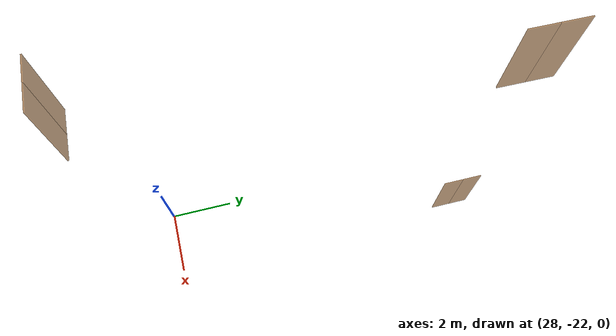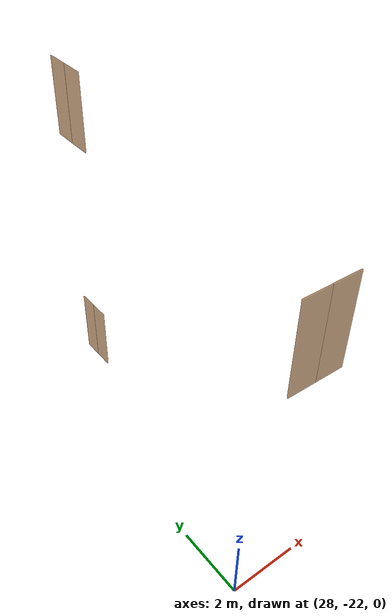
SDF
<sdf version="1.7">
 <world name="sim_world">
  <model name="TD1007AA">
   <pose>29.895930735907072 -12.466205875995822 0.0 0 0 -1.5737789346019069</pose>
   <link name="right">
    <pose>0.3066546672582795 0 1.11 0 0 0</pose>
    <visual name="right_visual">
     <geometry><box><size>0.603309334516559 0.03 2.2</size></box></geometry>
     <material>
      <ambient>0.5 0.25 0 0.6</ambient>
      <diffuse>0.5 0.25 0 0.6</diffuse>
      <pbr><metal><metalness>0.0</metalness></metal></pbr>
     </material>
    </visual>
    <collision name="right_collision">
     <geometry><box><size>0.603309334516559 0.03 2.2</size></box></geometry>
     <surface><contact><collide_bitmask>0x02</collide_bitmask></contact></surface>
    </collision>
    <inertial>
     <mass>50.0</mass>
     <inertia><ixx>20.17041666666667</ixx><iyy>21.683258971311727</iyy><izz>1.5203423046450555</izz></inertia>
    </inertial>
   </link>
   <joint name="right_joint" type="revolute">
    <parent>world</parent>
    <child>right</child>
    <axis><xyz>0 0 -1</xyz><limit><lower>0</lower><upper>1.57</upper></limit></axis>
    <pose>0.3066546672582795 0 0 0 0 0</pose>
   </joint>
   <link name="left">
    <pose>-0.3066546672582795 0 1.11 0 0 0</pose>
    <visual name="left_visual">
     <geometry><box><size>0.603309334516559 0.03 2.2</size></box></geometry>
     <material>
      <ambient>0.5 0.25 0 0.6</ambient>
      <diffuse>0.5 0.25 0 0.6</diffuse>
      <pbr><metal><metalness>0.0</metalness></metal></pbr>
     </material>
    </visual>
    <collision name="left_collision">
     <geometry><box><size>0.603309334516559 0.03 2.2</size></box></geometry>
     <surface><contact><collide_bitmask>0x02</collide_bitmask></contact></surface>
    </collision>
    <inertial>
     <mass>50.0</mass>
     <inertia><ixx>20.17041666666667</ixx><iyy>21.683258971311727</iyy><izz>1.5203423046450555</izz></inertia>
    </inertial>
   </link>
   <joint name="left_joint" type="revolute">
    <parent>world</parent>
    <child>left</child>
    <axis><xyz>0 0 -1</xyz><limit><lower>-1.57</lower><upper>0</upper></limit></axis>
    <pose>-0.3066546672582795 0 0 0 0 0</pose>
   </joint>
   <plugin name="register_component" filename="libregister_component.so">
    <component name="Door">
     <v_max_door>0.5</v_max_door>
     <a_max_door>0.3</a_max_door>
     <a_nom_door>0.15</a_nom_door>
     <dx_min_door>0.01</dx_min_door>
     <f_max_door>500.0</f_max_door>
     <ros_interface>true</ros_interface>
     <door name="TD1007AA" type="DoubleSwingDoor" left_joint_name="left_joint" right_joint_name="right_joint"/>
    </component>
   </plugin>
  </model>
  <model name="TD1104">
   <pose>29.831071160037812 -12.370400812692349 8.0 0 0 1.555111475044199</pose>
   <link name="right">
    <pose>0.3555122669612724 0 1.11 0 0 0</pose>
    <visual name="right_visual">
     <geometry><box><size>0.7010245339225448 0.03 2.2</size></box></geometry>
     <material>
      <ambient>0.5 0.25 0 0.6</ambient>
      <diffuse>0.5 0.25 0 0.6</diffuse>
      <pbr><metal><metalness>0.0</metalness></metal></pbr>
     </material>
    </visual>
    <collision name="right_collision">
     <geometry><box><size>0.7010245339225448 0.03 2.2</size></box></geometry>
     <surface><contact><collide_bitmask>0x02</collide_bitmask></contact></surface>
    </collision>
    <inertial>
     <mass>50.0</mass>
     <inertia><ixx>20.17041666666667</ixx><iyy>22.214314154838842</iyy><izz>2.0513974881721717</izz></inertia>
    </inertial>
   </link>
   <joint name="right_joint" type="revolute">
    <parent>world</parent>
    <child>right</child>
    <axis><xyz>0 0 1</xyz><limit><lower>0</lower><upper>1.57</upper></limit></axis>
    <pose>0.3555122669612724 0 0 0 0 0</pose>
   </joint>
   <link name="left">
    <pose>-0.3555122669612724 0 1.11 0 0 0</pose>
    <visual name="left_visual">
     <geometry><box><size>0.7010245339225448 0.03 2.2</size></box></geometry>
     <material>
      <ambient>0.5 0.25 0 0.6</ambient>
      <diffuse>0.5 0.25 0 0.6</diffuse>
      <pbr><metal><metalness>0.0</metalness></metal></pbr>
     </material>
    </visual>
    <collision name="left_collision">
     <geometry><box><size>0.7010245339225448 0.03 2.2</size></box></geometry>
     <surface><contact><collide_bitmask>0x02</collide_bitmask></contact></surface>
    </collision>
    <inertial>
     <mass>50.0</mass>
     <inertia><ixx>20.17041666666667</ixx><iyy>22.214314154838842</iyy><izz>2.0513974881721717</izz></inertia>
    </inertial>
   </link>
   <joint name="left_joint" type="revolute">
    <parent>world</parent>
    <child>left</child>
    <axis><xyz>0 0 1</xyz><limit><lower>-1.57</lower><upper>0</upper></limit></axis>
    <pose>-0.3555122669612724 0 0 0 0 0</pose>
   </joint>
   <plugin name="register_component" filename="libregister_component.so">
    <component name="Door">
     <v_max_door>0.5</v_max_door>
     <a_max_door>0.3</a_max_door>
     <a_nom_door>0.15</a_nom_door>
     <dx_min_door>0.01</dx_min_door>
     <f_max_door>500.0</f_max_door>
     <ros_interface>true</ros_interface>
     <door name="TD1104" type="DoubleSwingDoor" left_joint_name="left_joint" right_joint_name="right_joint"/>
    </component>
   </plugin>
  </model>
  <model name="TD1105">
   <pose>28.610416642762054 -22.824089985987072 8.0 0 0 3.11904258186162</pose>
   <link name="right">
    <pose>0.33110365024338156 0 1.11 0 0 0</pose>
    <visual name="right_visual">
     <geometry><box><size>0.6522073004867631 0.03 2.2</size></box></geometry>
     <material>
      <ambient>0.5 0.25 0 0.6</ambient>
      <diffuse>0.5 0.25 0 0.6</diffuse>
      <pbr><metal><metalness>0.0</metalness></metal></pbr>
     </material>
    </visual>
    <collision name="right_collision">
     <geometry><box><size>0.6522073004867631 0.03 2.2</size></box></geometry>
     <surface><contact><collide_bitmask>0x02</collide_bitmask></contact></surface>
    </collision>
    <inertial>
     <mass>50.0</mass>
     <inertia><ixx>20.17041666666667</ixx><iyy>21.9390598450343</iyy><izz>1.7761431783676291</izz></inertia>
    </inertial>
   </link>
   <joint name="right_joint" type="revolute">
    <parent>world</parent>
    <child>right</child>
    <axis><xyz>0 0 -1</xyz><limit><lower>0</lower><upper>1.57</upper></limit></axis>
    <pose>0.33110365024338156 0 0 0 0 0</pose>
   </joint>
   <link name="left">
    <pose>-0.33110365024338156 0 1.11 0 0 0</pose>
    <visual name="left_visual">
     <geometry><box><size>0.6522073004867631 0.03 2.2</size></box></geometry>
     <material>
      <ambient>0.5 0.25 0 0.6</ambient>
      <diffuse>0.5 0.25 0 0.6</diffuse>
      <pbr><metal><metalness>0.0</metalness></metal></pbr>
     </material>
    </visual>
    <collision name="left_collision">
     <geometry><box><size>0.6522073004867631 0.03 2.2</size></box></geometry>
     <surface><contact><collide_bitmask>0x02</collide_bitmask></contact></surface>
    </collision>
    <inertial>
     <mass>50.0</mass>
     <inertia><ixx>20.17041666666667</ixx><iyy>21.9390598450343</iyy><izz>1.7761431783676291</izz></inertia>
    </inertial>
   </link>
   <joint name="left_joint" type="revolute">
    <parent>world</parent>
    <child>left</child>
    <axis><xyz>0 0 -1</xyz><limit><lower>-1.57</lower><upper>0</upper></limit></axis>
    <pose>-0.33110365024338156 0 0 0 0 0</pose>
   </joint>
   <plugin name="register_component" filename="libregister_component.so">
    <component name="Door">
     <v_max_door>0.5</v_max_door>
     <a_max_door>0.3</a_max_door>
     <a_nom_door>0.15</a_nom_door>
     <dx_min_door>0.01</dx_min_door>
     <f_max_door>500.0</f_max_door>
     <ros_interface>true</ros_interface>
     <door name="TD1105" type="DoubleSwingDoor" left_joint_name="left_joint" right_joint_name="right_joint"/>
    </component>
   </plugin>
  </model>
 </world>
</sdf>
